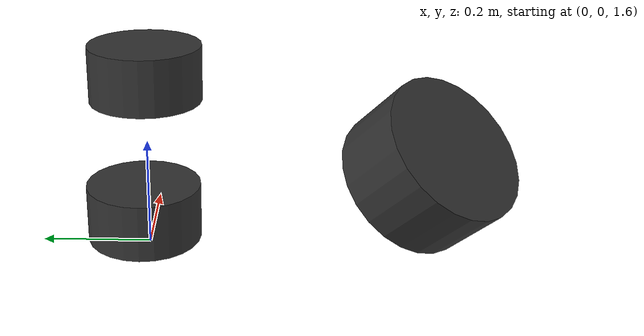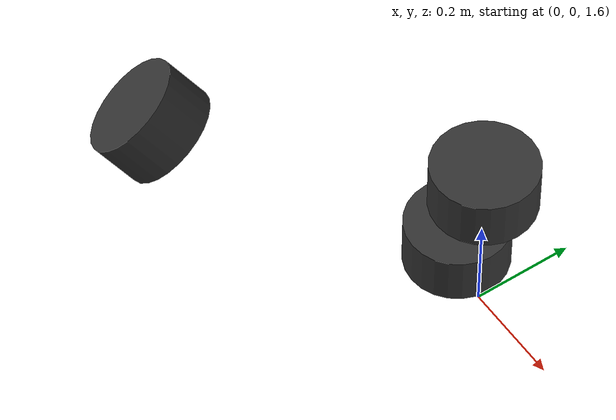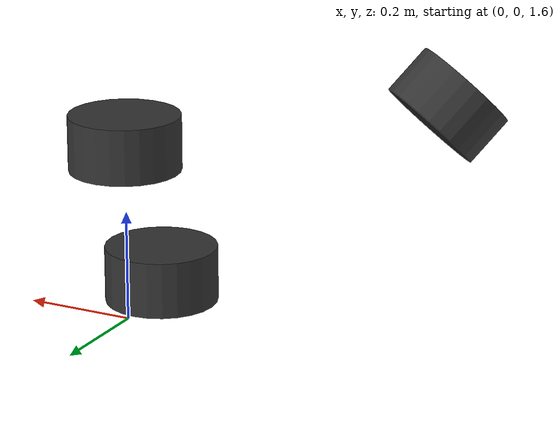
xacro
<?xml version="1.0"?>
<robot name="kaist" xmlns:xacro="http://tixiaoshan.github.io/">
  <xacro:property name="PI" value="3.1415926535897931" />

  <material name="blue">
    <color rgba="0.0 0.5 1.0 1"/>
  </material>
  <material name="orange">
    <color rgba="1.0 0.5 0.2 1"/>
  </material>
  <material name="gray">
    <color rgba="0.2 0.2 0.2 1"/>
  </material>

  <link name="base_link"></link>

  <link name="right_velodyne">
      <visual>
          <origin xyz="0 0 0"/>
          <geometry>
              <cylinder length="0.1" radius="0.1"/>
          </geometry>
          <material name="gray"/>
      </visual>
  </link>
  <joint name="cloud2_joint" type="fixed">
    <parent link="base_link"/>
    <child link="right_velodyne"/>
    <origin rpy="3.13323 2.36647 0.770273" xyz="-0.436669 -0.411346 1.94785"/>
  </joint>

  <!-- imu -->
  <link name="imu">
      <visual>
          <origin xyz="0 0 0"/>
          <geometry>
              <cylinder length="0.1" radius="0.1"/>
          </geometry>
          <material name="gray"/>
      </visual>
  </link>
  <joint name="imu_joint" type="fixed">
    <parent link="base_link"/>
    <child link="imu"/>
    <origin rpy="0 0 0" xyz="-0.07 0 1.7"/>
  </joint>

  <!-- gps -->
  <link name="vrs_gps">
      <visual>
          <origin xyz="0 0 0"/>
          <geometry>
              <cylinder length="0.1" radius="0.1"/>
          </geometry>
          <material name="gray"/>
      </visual>
  </link>
  <joint name="gps_joint" type="fixed">
    <parent link="base_link"/>
    <child link="vrs_gps"/>
    <origin rpy="0 0 0" xyz="0 0 1.93"/>
  </joint>

</robot>
